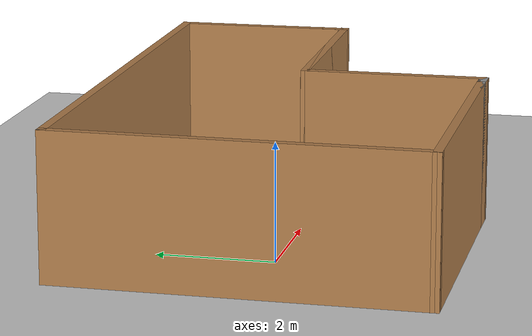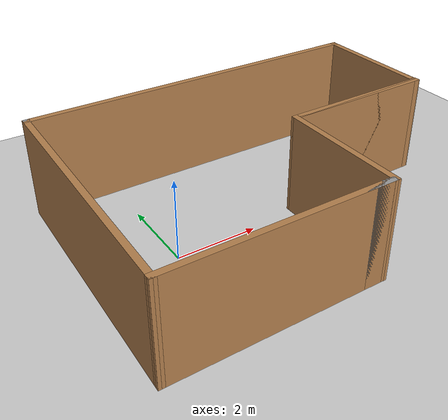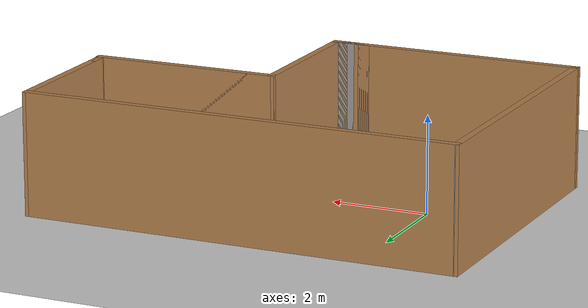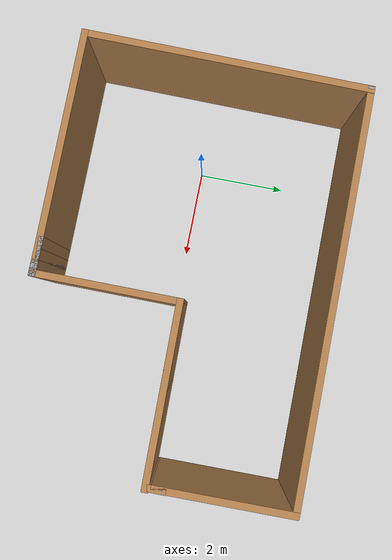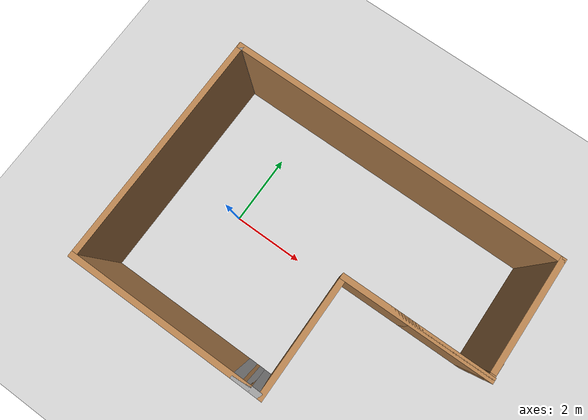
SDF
<sdf version="1.7">
 <world name="diff_drive_world">
  <model name="ground_plane">
   <static>1</static>
   <link name="link">
    <collision name="collision">
     <geometry><plane><normal>0 0 1</normal><size>100 100</size></plane></geometry>
     <surface>
      <contact><collide_bitmask>65535</collide_bitmask></contact>
      <friction><ode><mu>100</mu><mu2>50</mu2></ode></friction>
     </surface>
    </collision>
    <visual name="visual">
     <cast_shadows>0</cast_shadows>
     <geometry><plane><normal>0 0 1</normal><size>100 100</size></plane></geometry>
     <material>
      <script><uri>file://media/materials/scripts/gazebo.material</uri><name>Gazebo/Grey</name></script>
     </material>
    </visual>
   </link>
  </model>
  <light name="sun" type="directional">
   <pose>0 0 10 0 -0 0</pose>
   <diffuse>0.8 0.8 0.8 1</diffuse>
   <specular>0.2 0.2 0.2 1</specular>
   <attenuation>
    <range>1000</range>
    <constant>0.9</constant>
    <linear>0.01</linear>
    <quadratic>0.001</quadratic>
   </attenuation>
   <direction>-0.5 0.1 -0.9</direction>
   <spot><inner_angle>0</inner_angle><outer_angle>0</outer_angle><falloff>0</falloff></spot>
  </light>
  <physics name="ode_70iters" type="ode">
   <real_time_update_rate>1500</real_time_update_rate>
   <ode>
    <solver>
     <type>quick</type>
     <iters>70</iters>
     <sor>1.3</sor>
     <use_dynamic_moi_rescaling>0</use_dynamic_moi_rescaling>
    </solver>
    <constraints>
     <cfm>0</cfm>
     <erp>0.2</erp>
     <contact_max_correcting_vel>100</contact_max_correcting_vel>
     <contact_surface_layer>0.001</contact_surface_layer>
    </constraints>
   </ode>
   <max_step_size>0.001</max_step_size>
   <real_time_factor>1</real_time_factor>
  </physics>
  <gravity>0 0 -9.8</gravity>
  <magnetic_field>6e-06 2.3e-05 -4.2e-05</magnetic_field>
  <atmosphere type="adiabatic"/>
  <scene><ambient>0.4 0.4 0.4 1</ambient><background>0.7 0.7 0.7 1</background><shadows>1</shadows></scene>
  <spherical_coordinates>
   <surface_model>EARTH_WGS84</surface_model>
   <latitude_deg>0</latitude_deg>
   <longitude_deg>0</longitude_deg>
   <elevation>0</elevation>
   <heading_deg>0</heading_deg>
  </spherical_coordinates>
  <model name="Untitled">
   <link name="Wall_0">
    <pose>-2.06508 -3.10005 0 0 -0 0</pose>
    <visual name="Wall_0_Visual">
     <pose>0 0 1.25 0 -0 0</pose>
     <geometry><box><size>5 0.15 2.5</size></box></geometry>
     <material>
      <script><uri>file://media/materials/scripts/gazebo.material</uri><name>Gazebo/Wood</name></script>
      <ambient>1 1 1 1</ambient>
      <shader type="pixel"/>
     </material>
     <meta><layer>0</layer></meta>
    </visual>
    <collision name="Wall_0_Collision">
     <pose>0 0 1.25 0 -0 0</pose>
     <geometry><box><size>5 0.15 2.5</size></box></geometry>
     <surface>
      <friction>
       <ode><mu>1</mu><mu2>1</mu2><fdir1>0 0 0</fdir1><slip1>0</slip1><slip2>0</slip2></ode>
       <torsional>
        <coefficient>1</coefficient>
        <patch_radius>0</patch_radius>
        <surface_radius>0</surface_radius>
        <use_patch_radius>1</use_patch_radius>
        <ode><slip>0</slip></ode>
       </torsional>
      </friction>
      <bounce><restitution_coefficient>0</restitution_coefficient><threshold>1e+06</threshold></bounce>
      <contact>
       <collide_without_contact>0</collide_without_contact>
       <collide_without_contact_bitmask>1</collide_without_contact_bitmask>
       <collide_bitmask>1</collide_bitmask>
       <ode>
        <soft_cfm>0</soft_cfm>
        <soft_erp>0.2</soft_erp>
        <kp>1e+13</kp>
        <kd>1</kd>
        <max_vel>0.01</max_vel>
        <min_depth>0</min_depth>
       </ode>
       <bullet>
        <split_impulse>1</split_impulse>
        <split_impulse_penetration_threshold>-0.01</split_impulse_penetration_threshold>
        <soft_cfm>0</soft_cfm>
        <soft_erp>0.2</soft_erp>
        <kp>1e+13</kp>
        <kd>1</kd>
       </bullet>
      </contact>
     </surface>
    </collision>
   </link>
   <link name="Wall_1">
    <pose>0.359922 -3.10005 0 0 -0 0</pose>
    <visual name="Wall_1_Visual">
     <pose>0 0 1.25 0 -0 0</pose>
     <geometry><box><size>0.15 0.15 2.5</size></box></geometry>
     <material>
      <script><uri>file://media/materials/scripts/gazebo.material</uri><name>Gazebo/Grey</name></script>
      <ambient>1 1 1 1</ambient>
      <shader type="pixel"/>
     </material>
     <meta><layer>0</layer></meta>
    </visual>
    <collision name="Wall_1_Collision">
     <pose>0 0 1.25 0 -0 0</pose>
     <geometry><box><size>0.15 0.15 2.5</size></box></geometry>
     <surface>
      <friction>
       <ode><mu>1</mu><mu2>1</mu2><fdir1>0 0 0</fdir1><slip1>0</slip1><slip2>0</slip2></ode>
       <torsional>
        <coefficient>1</coefficient>
        <patch_radius>0</patch_radius>
        <surface_radius>0</surface_radius>
        <use_patch_radius>1</use_patch_radius>
        <ode><slip>0</slip></ode>
       </torsional>
      </friction>
      <bounce><restitution_coefficient>0</restitution_coefficient><threshold>1e+06</threshold></bounce>
      <contact>
       <collide_without_contact>0</collide_without_contact>
       <collide_without_contact_bitmask>1</collide_without_contact_bitmask>
       <collide_bitmask>1</collide_bitmask>
       <ode>
        <soft_cfm>0</soft_cfm>
        <soft_erp>0.2</soft_erp>
        <kp>1e+13</kp>
        <kd>1</kd>
        <max_vel>0.01</max_vel>
        <min_depth>0</min_depth>
       </ode>
       <bullet>
        <split_impulse>1</split_impulse>
        <split_impulse_penetration_threshold>-0.01</split_impulse_penetration_threshold>
        <soft_cfm>0</soft_cfm>
        <soft_erp>0.2</soft_erp>
        <kp>1e+13</kp>
        <kd>1</kd>
       </bullet>
      </contact>
     </surface>
    </collision>
   </link>
   <link name="Wall_10">
    <pose>-4.42858 3.07995 0 0 -0 0</pose>
    <visual name="Wall_10_Visual">
     <pose>0 0 1.25 0 -0 0</pose>
     <geometry><box><size>0.15 0.15 2.5</size></box></geometry>
     <material>
      <script><uri>file://media/materials/scripts/gazebo.material</uri><name>Gazebo/Grey</name></script>
      <ambient>1 1 1 1</ambient>
      <shader type="pixel"/>
     </material>
     <meta><layer>0</layer></meta>
    </visual>
    <collision name="Wall_10_Collision">
     <pose>0 0 1.25 0 -0 0</pose>
     <geometry><box><size>0.15 0.15 2.5</size></box></geometry>
     <surface>
      <friction>
       <ode><mu>1</mu><mu2>1</mu2><fdir1>0 0 0</fdir1><slip1>0</slip1><slip2>0</slip2></ode>
       <torsional>
        <coefficient>1</coefficient>
        <patch_radius>0</patch_radius>
        <surface_radius>0</surface_radius>
        <use_patch_radius>1</use_patch_radius>
        <ode><slip>0</slip></ode>
       </torsional>
      </friction>
      <bounce><restitution_coefficient>0</restitution_coefficient><threshold>1e+06</threshold></bounce>
      <contact>
       <collide_without_contact>0</collide_without_contact>
       <collide_without_contact_bitmask>1</collide_without_contact_bitmask>
       <collide_bitmask>1</collide_bitmask>
       <ode>
        <soft_cfm>0</soft_cfm>
        <soft_erp>0.2</soft_erp>
        <kp>1e+13</kp>
        <kd>1</kd>
        <max_vel>0.01</max_vel>
        <min_depth>0</min_depth>
       </ode>
       <bullet>
        <split_impulse>1</split_impulse>
        <split_impulse_penetration_threshold>-0.01</split_impulse_penetration_threshold>
        <soft_cfm>0</soft_cfm>
        <soft_erp>0.2</soft_erp>
        <kp>1e+13</kp>
        <kd>1</kd>
       </bullet>
      </contact>
     </surface>
    </collision>
   </link>
   <link name="Wall_3">
    <pose>-4.46433 -0.010051 0 0 -0 1.56246</pose>
    <visual name="Wall_3_Visual">
     <pose>0 0 1.25 0 -0 0</pose>
     <geometry><box><size>6.33021 0.15 2.5</size></box></geometry>
     <material>
      <script><uri>file://media/materials/scripts/gazebo.material</uri><name>Gazebo/Wood</name></script>
      <ambient>1 1 1 1</ambient>
      <shader type="pixel"/>
     </material>
     <meta><layer>0</layer></meta>
    </visual>
    <collision name="Wall_3_Collision">
     <pose>0 0 1.25 0 -0 0</pose>
     <geometry><box><size>6.33021 0.15 2.5</size></box></geometry>
     <surface>
      <friction>
       <ode><mu>1</mu><mu2>1</mu2><fdir1>0 0 0</fdir1><slip1>0</slip1><slip2>0</slip2></ode>
       <torsional>
        <coefficient>1</coefficient>
        <patch_radius>0</patch_radius>
        <surface_radius>0</surface_radius>
        <use_patch_radius>1</use_patch_radius>
        <ode><slip>0</slip></ode>
       </torsional>
      </friction>
      <bounce><restitution_coefficient>0</restitution_coefficient><threshold>1e+06</threshold></bounce>
      <contact>
       <collide_without_contact>0</collide_without_contact>
       <collide_without_contact_bitmask>1</collide_without_contact_bitmask>
       <collide_bitmask>1</collide_bitmask>
       <ode>
        <soft_cfm>0</soft_cfm>
        <soft_erp>0.2</soft_erp>
        <kp>1e+13</kp>
        <kd>1</kd>
        <max_vel>0.01</max_vel>
        <min_depth>0</min_depth>
       </ode>
       <bullet>
        <split_impulse>1</split_impulse>
        <split_impulse_penetration_threshold>-0.01</split_impulse_penetration_threshold>
        <soft_cfm>0</soft_cfm>
        <soft_erp>0.2</soft_erp>
        <kp>1e+13</kp>
        <kd>1</kd>
       </bullet>
      </contact>
     </surface>
    </collision>
   </link>
   <link name="Wall_4">
    <pose>-4.42858 3.07995 0 0 -0 0</pose>
    <visual name="Wall_4_Visual">
     <pose>0 0 1.25 0 -0 0</pose>
     <geometry><box><size>0.15 0.15 2.5</size></box></geometry>
     <material>
      <script><uri>file://media/materials/scripts/gazebo.material</uri><name>Gazebo/Grey</name></script>
      <ambient>1 1 1 1</ambient>
      <shader type="pixel"/>
     </material>
     <meta><layer>0</layer></meta>
    </visual>
    <collision name="Wall_4_Collision">
     <pose>0 0 1.25 0 -0 0</pose>
     <geometry><box><size>0.15 0.15 2.5</size></box></geometry>
     <surface>
      <friction>
       <ode><mu>1</mu><mu2>1</mu2><fdir1>0 0 0</fdir1><slip1>0</slip1><slip2>0</slip2></ode>
       <torsional>
        <coefficient>1</coefficient>
        <patch_radius>0</patch_radius>
        <surface_radius>0</surface_radius>
        <use_patch_radius>1</use_patch_radius>
        <ode><slip>0</slip></ode>
       </torsional>
      </friction>
      <bounce><restitution_coefficient>0</restitution_coefficient><threshold>1e+06</threshold></bounce>
      <contact>
       <collide_without_contact>0</collide_without_contact>
       <collide_without_contact_bitmask>1</collide_without_contact_bitmask>
       <collide_bitmask>1</collide_bitmask>
       <ode>
        <soft_cfm>0</soft_cfm>
        <soft_erp>0.2</soft_erp>
        <kp>1e+13</kp>
        <kd>1</kd>
        <max_vel>0.01</max_vel>
        <min_depth>0</min_depth>
       </ode>
       <bullet>
        <split_impulse>1</split_impulse>
        <split_impulse_penetration_threshold>-0.01</split_impulse_penetration_threshold>
        <soft_cfm>0</soft_cfm>
        <soft_erp>0.2</soft_erp>
        <kp>1e+13</kp>
        <kd>1</kd>
       </bullet>
      </contact>
     </surface>
    </collision>
   </link>
   <link name="Wall_8">
    <pose>4.47492 1.65995 0 0 -0 1.58121</pose>
    <visual name="Wall_8_Visual">
     <pose>0 0 1.25 0 -0 0</pose>
     <geometry><box><size>3.03016 0.15 2.5</size></box></geometry>
     <material>
      <script><uri>file://media/materials/scripts/gazebo.material</uri><name>Gazebo/Wood</name></script>
      <ambient>1 1 1 1</ambient>
      <shader type="pixel"/>
     </material>
     <meta><layer>0</layer></meta>
    </visual>
    <collision name="Wall_8_Collision">
     <pose>0 0 1.25 0 -0 0</pose>
     <geometry><box><size>3.03016 0.15 2.5</size></box></geometry>
     <surface>
      <friction>
       <ode><mu>1</mu><mu2>1</mu2><fdir1>0 0 0</fdir1><slip1>0</slip1><slip2>0</slip2></ode>
       <torsional>
        <coefficient>1</coefficient>
        <patch_radius>0</patch_radius>
        <surface_radius>0</surface_radius>
        <use_patch_radius>1</use_patch_radius>
        <ode><slip>0</slip></ode>
       </torsional>
      </friction>
      <bounce><restitution_coefficient>0</restitution_coefficient><threshold>1e+06</threshold></bounce>
      <contact>
       <collide_without_contact>0</collide_without_contact>
       <collide_without_contact_bitmask>1</collide_without_contact_bitmask>
       <collide_bitmask>1</collide_bitmask>
       <ode>
        <soft_cfm>0</soft_cfm>
        <soft_erp>0.2</soft_erp>
        <kp>1e+13</kp>
        <kd>1</kd>
        <max_vel>0.01</max_vel>
        <min_depth>0</min_depth>
       </ode>
       <bullet>
        <split_impulse>1</split_impulse>
        <split_impulse_penetration_threshold>-0.01</split_impulse_penetration_threshold>
        <soft_cfm>0</soft_cfm>
        <soft_erp>0.2</soft_erp>
        <kp>1e+13</kp>
        <kd>1</kd>
       </bullet>
      </contact>
     </surface>
    </collision>
   </link>
   <link name="Wall_9">
    <pose>0.015672 3.08995 0 0 0 -3.13934</pose>
    <visual name="Wall_9_Visual">
     <pose>0 0 1.25 0 -0 0</pose>
     <geometry><box><size>9.03852 0.15 2.5</size></box></geometry>
     <material>
      <script><uri>file://media/materials/scripts/gazebo.material</uri><name>Gazebo/Wood</name></script>
      <ambient>1 1 1 1</ambient>
      <shader type="pixel"/>
     </material>
     <meta><layer>0</layer></meta>
    </visual>
    <collision name="Wall_9_Collision">
     <pose>0 0 1.25 0 -0 0</pose>
     <geometry><box><size>9.03852 0.15 2.5</size></box></geometry>
     <surface>
      <friction>
       <ode><mu>1</mu><mu2>1</mu2><fdir1>0 0 0</fdir1><slip1>0</slip1><slip2>0</slip2></ode>
       <torsional>
        <coefficient>1</coefficient>
        <patch_radius>0</patch_radius>
        <surface_radius>0</surface_radius>
        <use_patch_radius>1</use_patch_radius>
        <ode><slip>0</slip></ode>
       </torsional>
      </friction>
      <bounce><restitution_coefficient>0</restitution_coefficient><threshold>1e+06</threshold></bounce>
      <contact>
       <collide_without_contact>0</collide_without_contact>
       <collide_without_contact_bitmask>1</collide_without_contact_bitmask>
       <collide_bitmask>1</collide_bitmask>
       <ode>
        <soft_cfm>0</soft_cfm>
        <soft_erp>0.2</soft_erp>
        <kp>1e+13</kp>
        <kd>1</kd>
        <max_vel>0.01</max_vel>
        <min_depth>0</min_depth>
       </ode>
       <bullet>
        <split_impulse>1</split_impulse>
        <split_impulse_penetration_threshold>-0.01</split_impulse_penetration_threshold>
        <soft_cfm>0</soft_cfm>
        <soft_erp>0.2</soft_erp>
        <kp>1e+13</kp>
        <kd>1</kd>
       </bullet>
      </contact>
     </surface>
    </collision>
   </link>
   <static>1</static>
   <pose>2.52808 0.19405 0 0 -0 0</pose>
  </model>
  <model name="Untitled_0">
   <pose>3.56109 -1.34006 0 0 -0 0</pose>
   <link name="Wall_0">
    <collision name="Wall_0_Collision">
     <geometry><box><size>3.9507 0.15 2.5</size></box></geometry>
     <pose>0 0 1.25 0 -0 0</pose>
    </collision>
    <visual name="Wall_0_Visual">
     <pose>0 0 1.25 0 -0 0</pose>
     <geometry><box><size>3.9507 0.15 2.5</size></box></geometry>
     <material>
      <script><uri>file://media/materials/scripts/gazebo.material</uri><name>Gazebo/Wood</name></script>
      <ambient>1 1 1 1</ambient>
     </material>
     <meta><layer>0</layer></meta>
    </visual>
    <pose>1.58506 1.54991 0 0 -0 0.010604</pose>
   </link>
   <link name="Wall_1">
    <collision name="Wall_1_Collision">
     <geometry><box><size>3.9507 0.15 2.5</size></box></geometry>
     <pose>0 0 1.25 0 -0 0</pose>
    </collision>
    <visual name="Wall_1_Visual">
     <pose>0 0 1.25 0 -0 0</pose>
     <geometry><box><size>3.9507 0.15 2.5</size></box></geometry>
     <material>
      <script><uri>file://media/materials/scripts/gazebo.material</uri><name>Gazebo/Wood</name></script>
      <ambient>1 1 1 1</ambient>
     </material>
     <meta><layer>0</layer></meta>
    </visual>
    <pose>1.58506 1.54991 0 0 -0 -3.13099</pose>
   </link>
   <link name="Wall_3">
    <collision name="Wall_3_Collision">
     <geometry><box><size>3.25 0.15 2.5</size></box></geometry>
     <pose>0 0 1.25 0 -0 0</pose>
    </collision>
    <visual name="Wall_3_Visual">
     <pose>0 0 1.25 0 -0 0</pose>
     <geometry><box><size>3.25 0.15 2.5</size></box></geometry>
     <material>
      <script><uri>file://media/materials/scripts/gazebo.material</uri><name>Gazebo/Wood</name></script>
      <ambient>1 1 1 1</ambient>
     </material>
     <meta><layer>0</layer></meta>
    </visual>
    <pose>-0.315187 -0.02024 0 0 -0 -1.5708</pose>
   </link>
   <link name="Wall_4">
    <collision name="Wall_4_Collision">
     <geometry><box><size>0.845336 0.15 2.5</size></box></geometry>
     <pose>0 0 1.25 0 -0 0</pose>
    </collision>
    <visual name="Wall_4_Visual">
     <pose>0 0 1.25 0 -0 0</pose>
     <geometry><box><size>0.845336 0.15 2.5</size></box></geometry>
     <material>
      <script><uri>file://media/materials/scripts/gazebo.material</uri><name>Gazebo/Grey</name></script>
      <ambient>1 1 1 1</ambient>
     </material>
     <meta><layer>0</layer></meta>
    </visual>
    <pose>-0.662843 -1.56738 0 0 -0 3.13337</pose>
   </link>
   <link name="Wall_5">
    <collision name="Wall_5_Collision">
     <geometry><box><size>0.845336 0.15 2.5</size></box></geometry>
     <pose>0 0 1.25 0 -0 0</pose>
    </collision>
    <visual name="Wall_5_Visual">
     <pose>0 0 1.25 0 -0 0</pose>
     <geometry><box><size>0.845336 0.15 2.5</size></box></geometry>
     <material>
      <script><uri>file://media/materials/scripts/gazebo.material</uri><name>Gazebo/Wood</name></script>
      <ambient>1 1 1 1</ambient>
     </material>
     <meta><layer>0</layer></meta>
    </visual>
    <pose>-0.662843 -1.56738 0 0 -0 -0.008223</pose>
   </link>
   <static>1</static>
  </model>
  <model name="Untitled_2">
   <pose>3.54867 0.32697 0 0 -0 0</pose>
   <link name="Wall_7">
    <collision name="Wall_7_Collision">
     <geometry><box><size>0.5 0.15 2.5</size></box></geometry>
     <pose>0 0 1.25 0 -0 0</pose>
    </collision>
    <visual name="Wall_7_Visual">
     <pose>0 0 1.25 0 -0 0</pose>
     <geometry><box><size>0.5 0.15 2.5</size></box></geometry>
     <material>
      <script><uri>file://media/materials/scripts/gazebo.material</uri><name>Gazebo/Wood</name></script>
      <ambient>1 1 1 1</ambient>
     </material>
     <meta><layer>0</layer></meta>
    </visual>
    <pose>3.47367 0.07697 0 0 -0 1.5708</pose>
   </link>
   <static>1</static>
  </model>
 </world>
</sdf>
